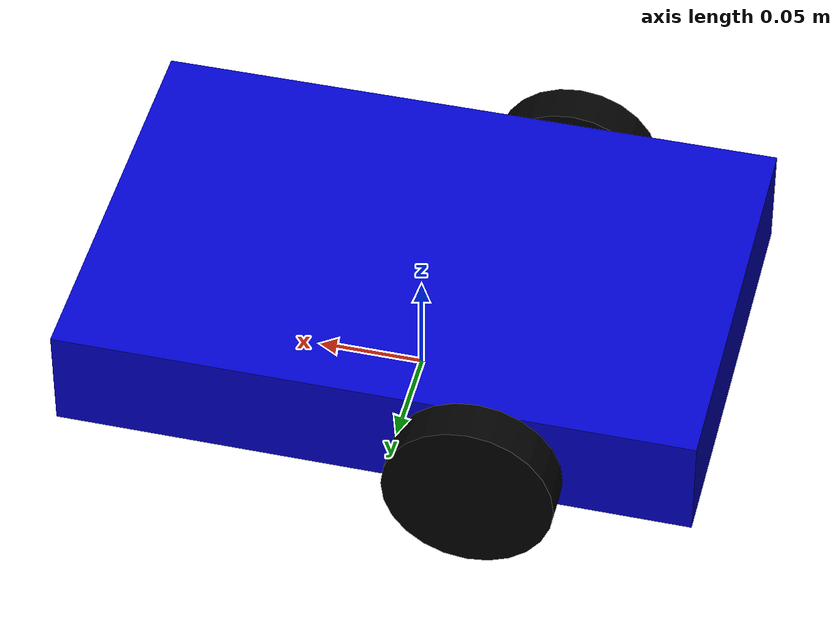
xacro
<?xml version="1.0"?>
<robot xmlns:xacro="http://www.ros.org/wiki/xacro" name="my_robot">

  <!-- BASE LINK -->
  <link name="base_link">
    <visual>
      <geometry><box size="0.3 0.2 0.05"/></geometry>
      <material name="blue"><color rgba="0.0 0.0 0.8 1.0"/></material>
    </visual>
    <collision><geometry><box size="0.3 0.2 0.05"/></geometry></collision>
    <inertial>
      <mass value="1.0"/>
      <inertia ixx="0.001" ixy="0" ixz="0" iyy="0.001" iyz="0" izz="0.001"/>
    </inertial>
  </link>

  <link name="base_footprint"/>
  <joint name="base_footprint_joint" type="fixed">
    <parent link="base_footprint"/>
    <child link="base_link"/>
    <origin xyz="0 0 0.05" rpy="0 0 0"/>
  </joint>

  <!-- LEFT WHEEL (Motor 1) -->
  <link name="left_wheel">
    <visual>
      <geometry><cylinder radius="0.04" length="0.02"/></geometry>
      <material name="black"><color rgba="0 0 0 1"/></material>
    </visual>
    <collision><geometry><cylinder radius="0.04" length="0.02"/></geometry></collision>
    <inertial>
      <mass value="0.1"/>
      <inertia ixx="0.0001" ixy="0" ixz="0" iyy="0.0001" iyz="0" izz="0.0001"/>
    </inertial>
  </link>
  <joint name="left_wheel_joint" type="continuous">
    <parent link="base_link"/><child link="left_wheel"/>
    <origin xyz="-0.05 0.11 -0.01" rpy="-1.5708 0 0"/>
    <axis xyz="0 0 1"/>
  </joint>

  <!-- RIGHT WHEEL (Motor 2) -->
  <link name="right_wheel">
    <visual>
      <geometry><cylinder radius="0.04" length="0.02"/></geometry>
      <material name="black"><color rgba="0 0 0 1"/></material>
    </visual>
    <collision><geometry><cylinder radius="0.04" length="0.02"/></geometry></collision>
    <inertial>
      <mass value="0.1"/>
      <inertia ixx="0.0001" ixy="0" ixz="0" iyy="0.0001" iyz="0" izz="0.0001"/>
    </inertial>
  </link>
  <joint name="right_wheel_joint" type="continuous">
    <parent link="base_link"/><child link="right_wheel"/>
    <origin xyz="-0.05 -0.11 -0.01" rpy="-1.5708 0 0"/>
    <axis xyz="0 0 1"/>
  </joint>

  <!-- CASTER / FREEWHEEL -->
  <link name="caster_wheel">
    <visual>
      <geometry><sphere radius="0.02"/></geometry>
      <material name="gray"><color rgba="0.5 0.5 0.5 1"/></material>
    </visual>
    <collision><geometry><sphere radius="0.02"/></geometry></collision>
    <inertial>
      <mass value="0.05"/>
      <inertia ixx="0.00001" ixy="0" ixz="0" iyy="0.00001" iyz="0" izz="0.00001"/>
    </inertial>
  </link>
  <joint name="caster_wheel_joint" type="fixed">
    <parent link="base_link"/><child link="caster_wheel"/>
    <origin xyz="0.12 0 -0.03" rpy="0 0 0"/>
  </joint>

  <!-- IMU LINK & SENSOR -->
  <link name="imu_link"/>
  <joint name="imu_joint" type="fixed">
    <parent link="base_link"/>
    <child link="imu_link"/>
    <origin xyz="0 0 0" rpy="0 0 0"/>
  </joint>

  <gazebo reference="imu_link">
    <sensor name="imu_sensor" type="imu">
      <always_on>1</always_on>
      <update_rate>100</update_rate>
      <visualize>true</visualize>
      <topic>imu</topic>
    </sensor>
  </gazebo>

  <!-- GAZEBO PLUGINS -->
  <gazebo>
    <plugin filename="gz-sim-diff-drive-system" name="gz::sim::systems::DiffDrive">
      <left_joint>left_wheel_joint</left_joint>
      <right_joint>right_wheel_joint</right_joint>
      <wheel_separation>0.22</wheel_separation>
      <wheel_radius>0.04</wheel_radius>
      <topic>cmd_vel</topic>
      <odom_topic>odom</odom_topic>
      <frame_id>odom</frame_id>
      <child_frame_id>base_footprint</child_frame_id>
      <odom_publish_frequency>30</odom_publish_frequency>
      <tf_topic>/tf</tf_topic>
    </plugin>
    <plugin filename="gz-sim-joint-state-publisher-system" name="gz::sim::systems::JointStatePublisher">
      <topic>/joint_states</topic>

      <joint_name>left_wheel_joint</joint_name>
      <joint_name>right_wheel_joint</joint_name>
    </plugin>
    <plugin filename="gz-sim-imu-system" name="gz::sim::systems::Imu"/>
  </gazebo>

  <gazebo reference="caster_wheel">
    <mu1>0.001</mu1>
    <mu2>0.001</mu2>
  </gazebo>

</robot>
